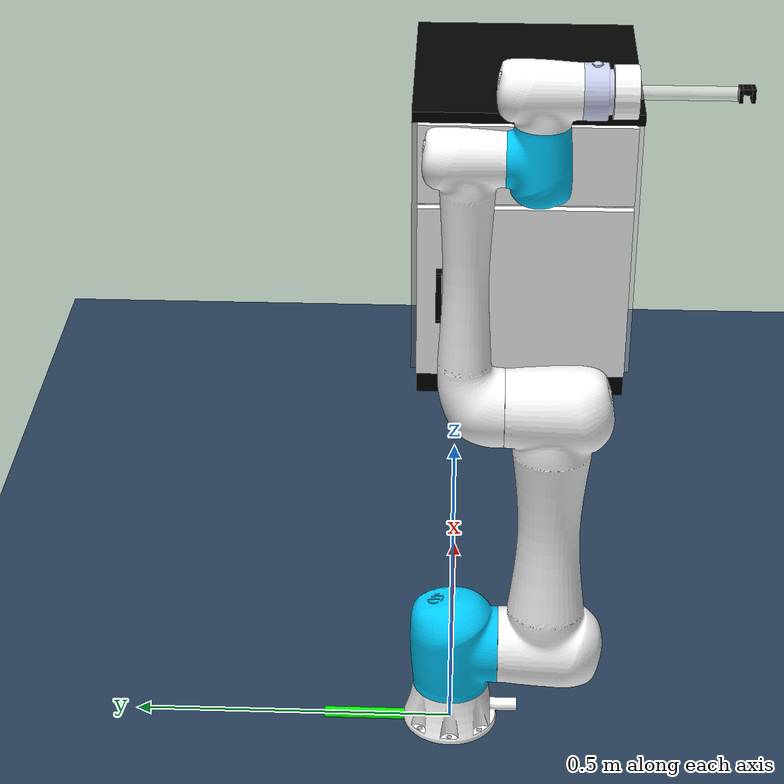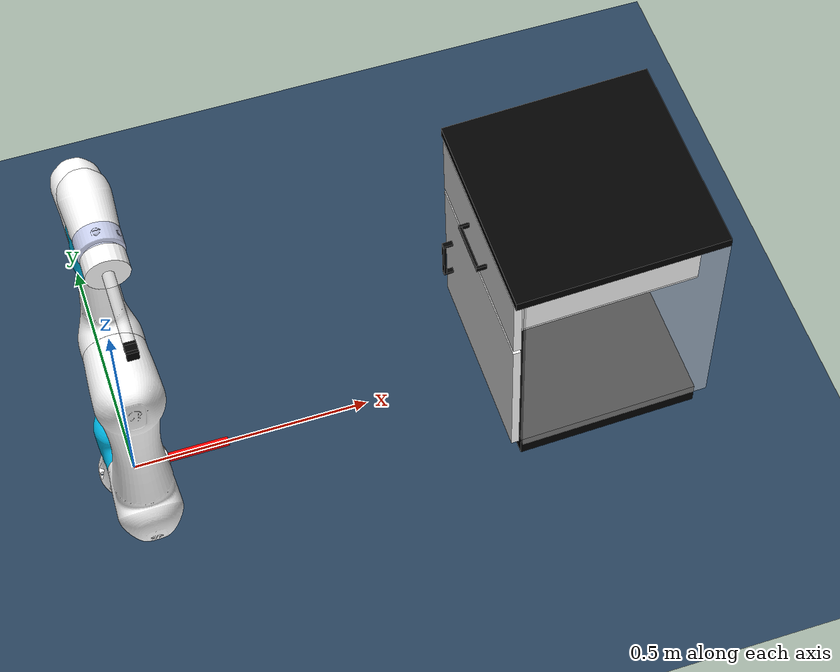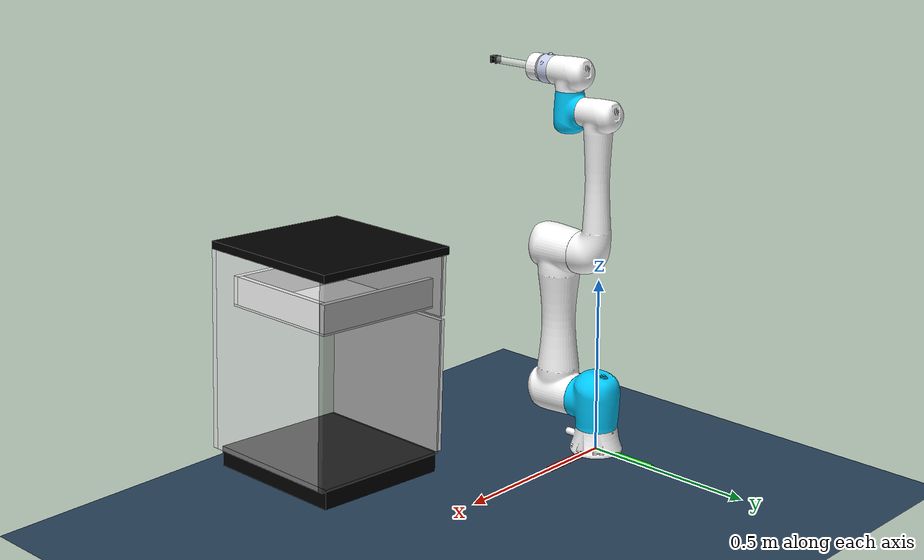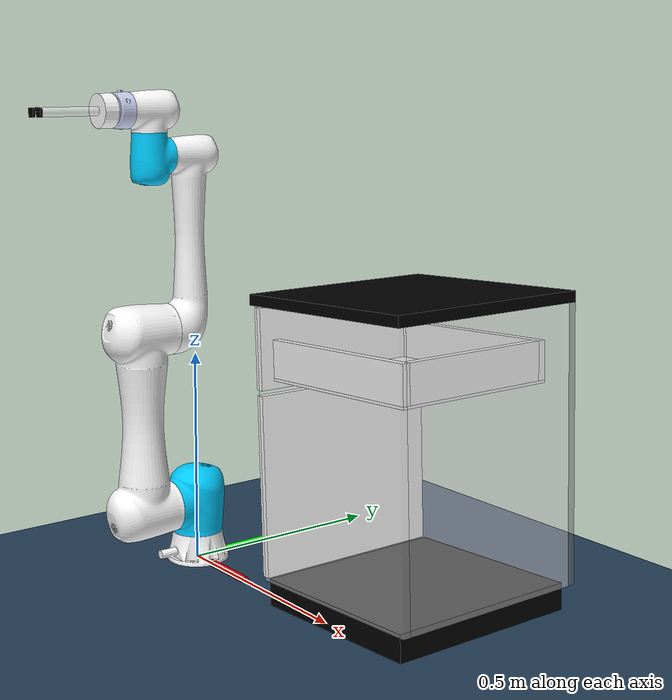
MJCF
<!--jk5+cabinet环境，用于开关抽屉任务，桌子比较高，比较远-->
<mujoco model="jk5_cabinet">
    <include file="basic_env.xml"/>
    <include file="robot_link.xml"/>
    <asset>
        <material name="MatMetal" specular="1" shininess="0.3" rgba="0.9 0.9 0.9 1"/>
        <material name="MatDarkWood" texrepeat="3 3" specular="0.4" shininess="0.1"/>
        <material name="MatLightWood" texrepeat="3 3" specular="0.4" shininess="0.1"/>
    </asset>
    <worldbody>
        <body name="cabinet" pos="0.9 -0.1135 0.2" quat="0 -0.02617694830787315 0 0.9996573249755573">
            <!--按压任务-->
            <body name="top board" pos="0 0 0.565">
                <geom size=".2 .2 .01" pos="0 0 0" type="box" rgba="0 0 0 1"
                      solimp="0.1 0.3 0.001 0.5 2" solref="-20000.0 -0.1"/>
                <inertial pos="0 0 0" mass="1000" diaginertia="0.1 0.1 0.1"/>
            </body>
            <!--抽屉任务。
            关闭时，把手中心实际位置为：0.8-0.2-0.0175,-0.1135,0.2+0.42+0.055=0.5825,-0.1135,0.675 -->
            <!--因此相对桌子底部中心的偏移为0.2175,0,0.475 -->
            <body name="drawer" pos="0.01 0 0.42">
                <!--底部-->
                <geom size=".175 .1625 .0025" pos="0 0 -0.0025" type="box" rgba="1 1 1 1"/>
                <!--侧面-->
                <geom size=".175 .0075 .035" pos="0 -0.1550 0.035" type="box" rgba="1 1 1 1"/>
                <geom size=".175 .0075 .035" pos="0 0.1550 0.035" type="box" rgba="1 1 1 1"/>
                <!--后面-->
                <geom size=".0075 .1475 .035" pos="-0.1675 0 0.035" type="box" rgba="1 1 1 1"/>
                <!--前面-->
                <geom size=".0075 .19 .075" pos="0.1825 0 0.055" type="box" rgba="1 1 1 1"
                      contype="0" conaffinity="0"/>
                <!--把手-->
                <body name="drawer handle part1" pos="0.19 0 0.055">
                    <geom size=".01 .0025 .005" pos="0.01 0.0475 0" type="box" rgba="0 0 0 1"/>
                    <geom size=".01 .0025 .005" pos="0.01 -0.0475 0" type="box" rgba="0 0 0 1"/>
                </body>
                <body name="drawer handle part2" pos="0.2075 0 0.055">
                    <geom size=".0025 .045 .005" pos="0 0 0" type="box" rgba="0 0 0 1"/>
                </body>
                <inertial pos="0 0 0" mass="1" diaginertia="0.1 0.1 0.1"/>
                <joint name="drawer joint" type="slide" pos="0 0 0" axis="1 0 0" range="0 0.3" limited="false"
                       damping="10" frictionloss="10"/>

            </body>
            <!--因此相对桌子底部中心的偏移为0.2175,-0.15,0.22 -->
            <body name="door" pos="0.1925 0 0.22">
                <!--门板-->
                <geom name="panel" size="0.0075 0.19 .17" type="box" material="MatDarkWood"/>
                <!--把手-->
                <body name="door handle part1" pos="0.0075 -0.15 0">
                    <geom size=".01 .005 .0025" pos="0.01 0 0.0475" type="box" rgba="0 0 0 1"/>
                    <geom size=".01 .005 .0025" pos="0.01 0 -0.0475" type="box" rgba="0 0 0 1"/>
                </body>
                <body name="door handle part2" pos="0.025 -0.15 0">
                    <geom size=".0025 .005 .045" pos="0 0 0" type="box" rgba="0 0 0 1"/>
                </body>
                <inertial pos="0.0296816 -0.00152345 0" quat="0.701072 0 0 0.713091"
                          mass="2.43455" diaginertia="0.0913751 0.0521615 0.043714"/>
                <joint name="door joint" pos="0 0.19 0" axis="0 0 1" range="0.0 1.5707" limited="true"
                       damping="1" frictionloss="1"/>
            </body>
            <!--无关接触-->
            <body name="bottem board" pos="0 0 0.025">
                <geom size=".18 .19 .025" pos="0 0 0" type="box" rgba="0 0 0 1"/>
                <inertial pos="0 0 0" mass="1000" diaginertia="0.1 0.1 0.1"/>
            </body>
            <body name="left board" pos="-0.01 0.1925 0.3025">
                <geom size=".19 .0075 0.2525" pos="0 0 0" type="box" rgba="1 1 1 0.5"/>
                <inertial pos="0 0 0" mass="1" diaginertia="0.1 0.1 0.1"/>
            </body>
            <body name="right board" pos="-0.01 -0.1925 0.3025">
                <geom size=".19 .0075 0.2525" pos="0 0 0" type="box" rgba="0.5 0.5 0.5 0.5"/>
                <inertial pos="0 0 0" mass="1" diaginertia="0.1 0.1 0.1"/>
            </body>
            <body name="back board" pos="-0.1925 0 0.3025">
                <geom size=".0075 .185 0.2525" pos="0 0 0" type="box" rgba="1 1 1 0.5"/>
                <inertial pos="0 0 0" mass="1" diaginertia="0.1 0.1 0.1"/>
            </body>
        </body>
    </worldbody>
    <equality>
        <connect name="robot2drawer" active="false" body1="dummy_body" body2="drawer handle part2" anchor="0.01 0 0" solref="2e-3 1"/>
        <connect name="robot2door" active="false" body1="dummy_body" body2="door handle part2" anchor="0.01 0 0" solref="2e-3 1"/>
    </equality>
</mujoco>

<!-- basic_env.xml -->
<mujoco model="basic setting">
    <compiler angle="radian" meshdir="../meshes/" inertiafromgeom="false" coordinate="local"/>
    <size njmax="5000" nconmax="1000"/>
    <option timestep="2e-3">
        <flag contact="enable" warmstart="disable" frictionloss="enable"/>
    </option>
    <default>
        <geom solref=".002 1" friction="1 0.005 0.0001" condim="4"/>
    </default>
    <visual>
        <map force="10" torque="1"/>
        <rgba contactforce="1 0 0 1" contacttorque="0 1 0 1" contactfriction="0 0 1 1"/>
    </visual>
    <asset>
        <material name="common_mat" specular="0" shininess="0.5" reflectance="0" rgba="0.93 0.93 0.93 1"/>
        <material name='floor_mat' texture="floor_tex" shininess="0.8" texrepeat="10 10" specular="0.7" reflectance="0."/>
        <texture type="skybox" builtin="gradient" rgb1="1 1 1" rgb2="1 1 1" width="512" height="512"/>
        <texture name="floor_tex" type="2d" builtin="checker" rgb1=".2 .3 .4" rgb2=".1 .2 .3" width="100" height="100"/>
        <hfield name="sin_floor" file="sin floor.png" nrow="0" ncol="0" size="0.25 0.2 0.02 0.01"/>
    </asset>
    <worldbody>
        <light name="light" mode="fixed" directional="true" pos="1 0 3"/>
        <geom name='floor' material="floor_mat" pos='0 0 0' size='2.5 2.5 0.1' type='plane'/>
        <site name="w_x" pos="0.1 0 0" rgba="1 0 0 1" size="0.01 0.1" type="cylinder" quat="0 0.7071068 0 0.7071068"/>
        <site name="w_y" pos="0 0.1 0" rgba="0 1 0 1" size="0.01 0.1" type="cylinder" quat="0.7071068 -0.7071068 0 0"/>
        <site name="w_z" pos="0 0 0.1" rgba="0 0 1 1" size="0.01 0.1" type="cylinder" quat="1 0 0 0"/>
    </worldbody>
</mujoco>

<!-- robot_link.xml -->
<!--jk5+连接件环境，用于开关实验-->
<mujoco model="jk5">
    <asset>
        <mesh name="base_link" file="base_link.STL" />
        <mesh name="link1" file="link1.STL" />
        <mesh name="link2" file="link2.STL" />
        <mesh name="link3" file="link3.STL" />
        <mesh name="link4" file="link4.STL" />
        <mesh name="link5" file="link5.STL" />
        <mesh name="link6" file="link6.STL" />
    </asset>
    <worldbody>
        <body name="jk5" pos="0 0 0">
            <body name="base_link" pos="0 0 0">
                <geom type="mesh" contype="0" conaffinity="0" rgba="1 1 1 1" mesh="base_link"/>
                <body name="link1" pos="0 0 0.069">
                    <geom type="mesh" contype="0" conaffinity="0" rgba="0 0.8 1 1" mesh="link1"/>
                    <joint name="joint1" pos="0 0 0" axis="0 0 1" limited="true" range="-3.14 3.14"/>
                    <inertial pos="-3.8005e-05 -0.0024889 0.054452" quat="0.696512 0.0244353 -0.0262529 0.716648"
                              mass="4.27" diaginertia="0.0214324 0.0213196 0.00795099"/>
                    <body name="link2" pos="0 0 0.073" quat="0.707106781 0.707106781 0 0">
                        <geom type="mesh" contype="0" conaffinity="0" rgba="1 1 1 1" mesh="link2"/>
                        <joint name="joint2" pos="0 0 0" axis="0 0 1" limited="true" range="-3.14 3.14"/>
                        <inertial pos="0 0.21252 0.12053" quat="0.414451 0.57284 0.573072 0.414334"
                                  mass="10.1" diaginertia="1.01715 0.953511 0.0834946"/>
                        <body name="link3" pos="0 0.425 0" quat="0.707106781 0 0 0.707106781">
                            <geom type="mesh" contype="0" conaffinity="0" rgba="1 1 1 1" mesh="link3"/>
                            <joint name="joint3" pos="0 0 0" axis="0 0 1" limited="true" range="-3.14 3.14"/>
                            <inertial pos="0.27205 1.9634e-05 0.023591" quat="0.482588 0.516912 0.516005 0.483374"
                                      mass="2.61" diaginertia="0.262358 0.261811 0.0036704"/>
                            <body name="link4" pos="0.395 0 0">
                                <geom type="mesh" contype="0" conaffinity="0" rgba="0 0.8 1 1" mesh="link4"/>
                                <joint name="joint4" pos="0 0 0" axis="0 0 1" limited="true" range="-3.14 3.14"/>
                                <inertial pos="3.0707e-05 -0.015152 0.11185" quat="0.997531 0.0701668 0.000322345 -0.00295604"
                                          mass="1.45" diaginertia="0.0201018 0.0196889 0.00158379"/>
                                <body name="link5" pos="0 0 0.1135" quat="0.5 -0.5 0.5 -0.5">
                                    <geom type="mesh" contype="0" conaffinity="0" rgba="1 1 1 1" mesh="link5"/>
                                    <joint name="joint5" pos="0 0 0" axis="0 0 1" limited="true" range="-3.14 3.14"/>
                                    <inertial pos="-3.0707e-05 0.015152 0.099848"  quat="0.704002 -0.0654372 0.0666836 0.704026"
                                              mass="1.45" diaginertia="0.0057004 0.0057004 0.0057004"/>
                                    <body name="link6" pos="0 0 0.1015" quat="0.707106781 0.707106781 0 0">
                                        <geom type="mesh" contype="0" conaffinity="0" rgba="0.79216 0.81961 0.93333 1" mesh="link6"/>
                                        <joint name="joint6" pos="0 0 0" axis="0 0 1" limited="true" range="-3.14 3.14"/>
                                        <inertial pos="0 0.00058691 0.072051" quat="0.999992 -0.00407703 0 0"
                                                  mass="0.21" diaginertia="0.00128044 0.00120857 0.000194485"/>
                                        <!--机器人末端位置，re for robot end-->
                                        <site name="re" pos="0 0 0" rgba="1 0 0 0" size="0.03 0.03 0.03" type="box"/>
                                        <!--执行器-->
                                        <body name="ee_link" pos="0 0 0.094">
                                            <geom name="ft_sensor" type="cylinder" rgba="1 1 1 1" fromto="0 0 0  0 0 0.034" size="0.0375"/>
                                            <geom name="stick" type="cylinder" rgba="1 1 1 0.5" pos="0 0 0.0845" size="0.01 0.0845"
                                                  contype="0" conaffinity="0"/>
                                            <inertial pos="0 0 0.015" mass="0.424"
                                                      diaginertia="0.00019875 0.00019875 0.00019080"/>
                                            <!--执行器末端位置-->
                                            <site name="ee" pos="0 0 0.169" rgba="1 0 0 0" size="0.01 0.01 0.01" type="sphere"/>
                                            <!--ee_link与link6，力传感器的力-->
                                            <site name="nft_sensor" pos="0 0 0" rgba="1 0 0 0" size="0.01 0.01 0.01" type="sphere"/>
                                            <!--tip与ee_link，接触点的力，专门定义dummy_body-->
                                            <body name="dummy_body" pos="0 0 0.169">
                                                <geom pos="0 0 0.0025" size=".01 .01 .0025" type="box" rgba="0 0 0 1"/>
                                                <geom pos="0 0 0.0195" size=".01 .01 .0025" type="box" rgba="0 0 0 1"/>
                                                <geom pos="0 0.006 0.011" size=".01 .004 .006" type="box" rgba="0 0 0 1"/>
                                                <inertial pos="0 0 0" mass="0.000000001" diaginertia="0.000000001 0.000000001 0.000000001"/>
                                                <site name="contact_sensor" pos="0 0 0" rgba="1 0 0 0" size="0.0005 0.0005 0.0005" type="sphere"/>
                                            </body>
                                        </body>
                                    </body>
                                </body>
                            </body>
                        </body>
                    </body>
                </body>
            </body>
        </body>
    </worldbody>
    <actuator>
        <motor name='motor1' ctrllimited="true" ctrlrange="-500 500" joint='joint1' gear="1"/>
        <motor name='motor2' ctrllimited="true" ctrlrange="-500 500" joint='joint2' gear="1"/>
        <motor name='motor3' ctrllimited="true" ctrlrange="-500 500" joint='joint3' gear="1"/>
        <motor name='motor4' ctrllimited="true" ctrlrange="-500 500" joint='joint4' gear="1"/>
        <motor name='motor5' ctrllimited="true" ctrlrange="-500 500" joint='joint5' gear="1"/>
        <motor name='motor6' ctrllimited="true" ctrlrange="-500 500" joint='joint6' gear="1"/>
    </actuator>
    <sensor>
        <!--检测接触点的力与力矩-->
        <force name="contact_force" site="contact_sensor"/>
        <torque name="contact_torque" site="contact_sensor"/>
        <touch name="contact_touch" site="contact_sensor"/>
        <!--检测nft传感器的力与力矩-->
        <force name="nft_force" site="nft_sensor"/>
        <torque name="nft_torque" site="nft_sensor"/>
    </sensor>
</mujoco>
